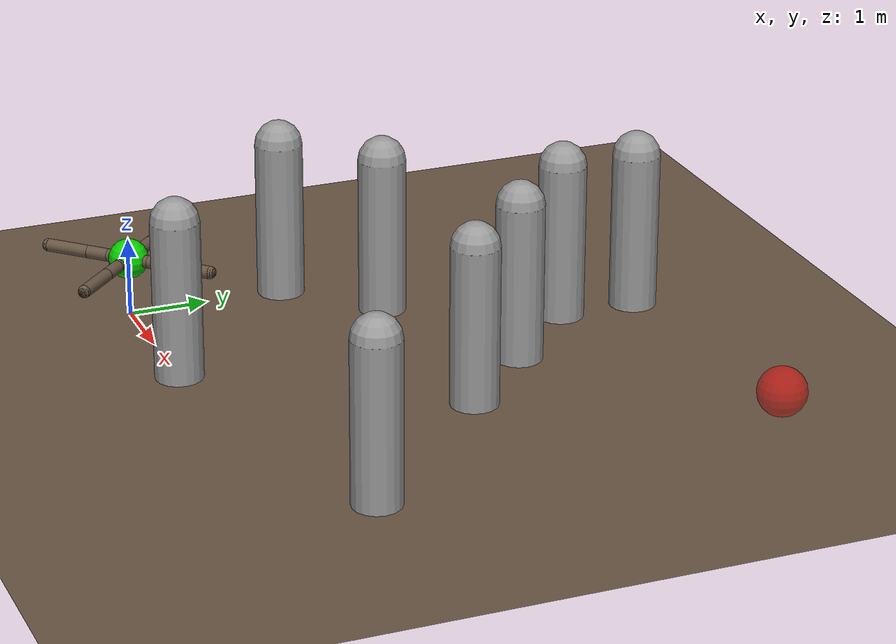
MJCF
<mujoco model="ant scene">
  <include file="ant.xml"/>

  <statistic center="0.3 0 0.4" extent="0.8"/>

  <!-- Target sphere -->
  <worldbody>
    <body name="goal" mocap="true" pos="6 6 0.5">
      <site type="sphere" size=".3" rgba="1 0 0 0.5"  />
    </body>
  </worldbody>

  <!-- Obstacles -->
  <worldbody>
    <geom name="obstacle1" type="capsule" pos="0  2  1" size="0.3 1" rgba="0.6 0.6 0.6 1" contype="2" conaffinity="4"/>
    <geom name="obstacle2" type="capsule" pos="2  0  1" size="0.3 1" rgba="0.6 0.6 0.6 1" contype="2" conaffinity="4"/>
    <geom name="obstacle3" type="capsule" pos="3  4  1" size="0.3 1" rgba="0.6 0.6 0.6 1" contype="2" conaffinity="4"/>
    <geom name="obstacle4" type="capsule" pos="2  6  1" size="0.3 1" rgba="0.6 0.6 0.6 1" contype="2" conaffinity="4"/>
    <geom name="obstacle5" type="capsule" pos="1  3  1" size="0.3 1" rgba="0.6 0.6 0.6 1" contype="2" conaffinity="4"/>
    <geom name="obstacle6" type="capsule" pos="6  1  1" size="0.3 1" rgba="0.6 0.6 0.6 1" contype="2" conaffinity="4"/>
    <geom name="obstacle7" type="capsule" pos="4  3  1" size="0.3 1" rgba="0.6 0.6 0.6 1" contype="2" conaffinity="4"/>
    <geom name="obstacle8" type="capsule" pos="2  5  1" size="0.3 1" rgba="0.6 0.6 0.6 1" contype="2" conaffinity="4"/>
  </worldbody>

  <visual>
    <headlight diffuse="1 1 1" ambient="0.3 0.3 0.3" specular="0 0 0"/>
    <rgba haze="0.15 0.25 0.35 1"/>
    <global azimuth="120" elevation="-20"/>
  </visual>

  <asset>
    <texture type="skybox" builtin="gradient" rgb1="0.3 0.5 0.7" rgb2="0 0 0" width="512" height="3072"/>
    <texture type="2d" name="groundplane" builtin="checker" mark="edge" rgb1="0.2 0.3 0.4" rgb2="0.1 0.2 0.3"
      markrgb="0.8 0.8 0.8" width="300" height="300"/>
    <material name="groundplane" texture="groundplane" texuniform="true" texrepeat="5 5" reflectance="0.2"/>
  </asset>

  <worldbody>
    <light pos="0 0 5" dir="0 0 -1" directional="true" diffuse="1 1 1"/>
    <geom name="floor" size="0 0 0.05" type="plane" material="groundplane" contype="1" conaffinity="4"/>
  </worldbody>
</mujoco>

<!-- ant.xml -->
<mujoco model="ant">
  <compiler angle="degree" coordinate="local" inertiafromgeom="true"/>
  <option timestep="0.01" iterations="4" />
  <custom>
    <!-- brax custom params -->
    <numeric data="0.0 0.0 0.55 1.0 0.0 0.0 0.0 0.0 1.0 0.0 -1.0 0.0 -1.0 0.0 1.0" name="init_qpos"/>
    <numeric data="1000" name="constraint_limit_stiffness"/>
    <numeric data="4000" name="constraint_stiffness"/>
    <numeric data="10" name="constraint_ang_damping"/>
    <numeric data="20" name="constraint_vel_damping"/>
    <numeric data="0.5" name="joint_scale_pos"/>
    <numeric data="0.2" name="joint_scale_ang"/>
    <numeric data="0.0" name="ang_damping"/>
    <numeric data="1" name="spring_mass_scale"/>
    <numeric data="1" name="spring_inertia_scale"/>
    <numeric data="15" name="solver_maxls"/>
  </custom>
  <default>
    <joint armature="1" damping="1" limited="true"/>
    <geom contype="4" conaffinity="3" condim="3" density="5.0" friction="1 0.5 0.5"
     rgba="0.4 0.33 0.26 1.0"/>
  </default>
  <asset>
    <texture builtin="gradient" height="100" rgb1="1 1 1" rgb2="0 0 0" type="skybox" width="100"/>
    <texture builtin="flat" height="1278" mark="cross" markrgb="1 1 1" name="texgeom" random="0.01" rgb1="0.8 0.6 0.4" rgb2="0.8 0.6 0.4" type="cube" width="127"/>
    <texture builtin="checker" height="100" name="texplane" rgb1="0 0 0" rgb2="0.8 0.8 0.8" type="2d" width="100"/>
    <material name="MatPlane" reflectance="0.5" shininess="1" specular="1" texrepeat="60 60" texture="texplane"/>
    <material name="geom" texture="texgeom" texuniform="true"/>
  </asset>
  <worldbody>
    <light cutoff="100" diffuse="1 1 1" dir="-0 0 -1.3" directional="true" exponent="1" pos="0 0 1.3" specular=".1 .1 .1"/>
    <body name="torso" pos="0 0 0.75">
      <site name="torso_site" pos="0 0 0" type="sphere" size="0.251" rgba="0 1 0 0.8"/>
      <camera name="track" mode="trackcom" pos="0 -3 0.3" xyaxes="1 0 0 0 0 1"/>
      <geom name="torso_geom" pos="0 0 0" size="0.25" type="sphere"/>
      <joint armature="0" damping="0" limited="false" margin="0.01" name="root" pos="0 0 0" type="free"/>
      <body name="front_left_leg" pos="0 0 0">
        <geom fromto="0.0 0.0 0.0 0.2 0.2 0.0" name="aux_1_geom" size="0.08" type="capsule"/>
        <body name="aux_1" pos="0.2 0.2 0">
          <joint axis="0 0 1" name="hip_1" pos="0.0 0.0 0.0" range="-30 30" type="hinge"/>
          <geom fromto="0.0 0.0 0.0 0.2 0.2 0.0" name="left_leg_geom" size="0.08" type="capsule"/>
          <body pos="0.2 0.2 0">
            <joint axis="-1 1 0" name="ankle_1" pos="0.0 0.0 0.0" range="30 70" type="hinge"/>
            <geom fromto="0.0 0.0 0.0 0.4 0.4 0.0" name="left_ankle_geom" size="0.08" type="capsule"/>
            <geom name="left_foot_geom" contype="1" pos="0.4 0.4 0" size="0.08" type="sphere" mass="0"/>
          </body>
        </body>
      </body>
      <body name="front_right_leg" pos="0 0 0">
        <geom fromto="0.0 0.0 0.0 -0.2 0.2 0.0" name="aux_2_geom" size="0.08" type="capsule"/>
        <body name="aux_2" pos="-0.2 0.2 0">
          <joint axis="0 0 1" name="hip_2" pos="0.0 0.0 0.0" range="-30 30" type="hinge"/>
          <geom fromto="0.0 0.0 0.0 -0.2 0.2 0.0" name="right_leg_geom" size="0.08" type="capsule"/>
          <body pos="-0.2 0.2 0">
            <joint axis="1 1 0" name="ankle_2" pos="0.0 0.0 0.0" range="-70 -30" type="hinge"/>
            <geom fromto="0.0 0.0 0.0 -0.4 0.4 0.0" name="right_ankle_geom" size="0.08" type="capsule"/>
            <geom name="right_foot_geom" contype="1" pos="-0.4 0.4 0" size="0.08" type="sphere" mass="0"/>
          </body>
        </body>
      </body>
      <body name="back_leg" pos="0 0 0">
        <geom fromto="0.0 0.0 0.0 -0.2 -0.2 0.0" name="aux_3_geom" size="0.08" type="capsule"/>
        <body name="aux_3" pos="-0.2 -0.2 0">
          <joint axis="0 0 1" name="hip_3" pos="0.0 0.0 0.0" range="-30 30" type="hinge"/>
          <geom fromto="0.0 0.0 0.0 -0.2 -0.2 0.0" name="back_leg_geom" size="0.08" type="capsule"/>
          <body pos="-0.2 -0.2 0">
            <joint axis="-1 1 0" name="ankle_3" pos="0.0 0.0 0.0" range="-70 -30" type="hinge"/>
            <geom fromto="0.0 0.0 0.0 -0.4 -0.4 0.0" name="third_ankle_geom" size="0.08" type="capsule"/>
            <geom name="third_foot_geom" contype="1" pos="-0.4 -0.4 0" size="0.08" type="sphere" mass="0"/>
          </body>
        </body>
      </body>
      <body name="right_back_leg" pos="0 0 0">
        <geom fromto="0.0 0.0 0.0 0.2 -0.2 0.0" name="aux_4_geom" size="0.08" type="capsule"/>
        <body name="aux_4" pos="0.2 -0.2 0">
          <joint axis="0 0 1" name="hip_4" pos="0.0 0.0 0.0" range="-30 30" type="hinge"/>
          <geom fromto="0.0 0.0 0.0 0.2 -0.2 0.0" name="rightback_leg_geom" size="0.08" type="capsule"/>
          <body pos="0.2 -0.2 0">
            <joint axis="1 1 0" name="ankle_4" pos="0.0 0.0 0.0" range="30 70" type="hinge"/>
            <geom fromto="0.0 0.0 0.0 0.4 -0.4 0.0" name="fourth_ankle_geom" size="0.08" type="capsule"/>
            <geom name="fourth_foot_geom" contype="1" pos="0.4 -0.4 0" size="0.08" type="sphere" mass="0"/>
          </body>
        </body>
      </body>
    </body>
  </worldbody>
  <actuator>
    <motor ctrllimited="true" ctrlrange="-1.0 1.0" joint="hip_4" gear="150"/>
    <motor ctrllimited="true" ctrlrange="-1.0 1.0" joint="ankle_4" gear="150"/>
    <motor ctrllimited="true" ctrlrange="-1.0 1.0" joint="hip_1" gear="150"/>
    <motor ctrllimited="true" ctrlrange="-1.0 1.0" joint="ankle_1" gear="150"/>
    <motor ctrllimited="true" ctrlrange="-1.0 1.0" joint="hip_2" gear="150"/>
    <motor ctrllimited="true" ctrlrange="-1.0 1.0" joint="ankle_2" gear="150"/>
    <motor ctrllimited="true" ctrlrange="-1.0 1.0" joint="hip_3" gear="150"/>
    <motor ctrllimited="true" ctrlrange="-1.0 1.0" joint="ankle_3" gear="150"/>
  </actuator>
</mujoco>
